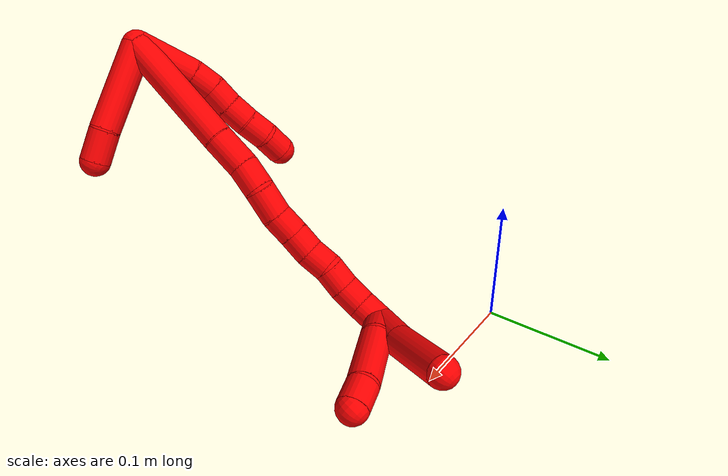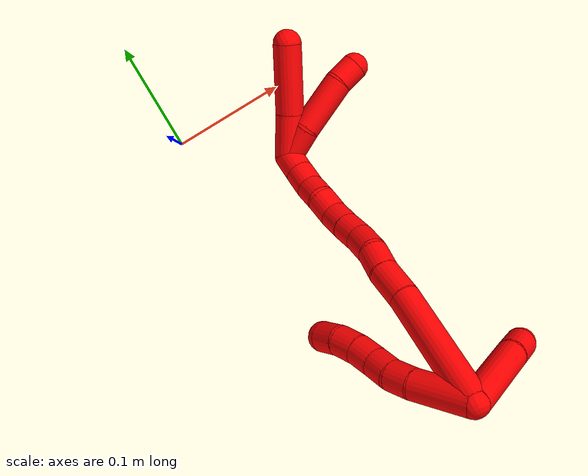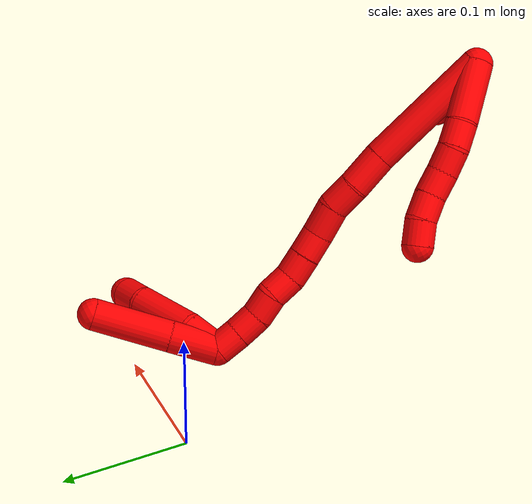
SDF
<sdf version="1.7">
 <world name="default">
  <model name="2">
   <static>0</static>
   <link name="2">
    <collision name="collision-cylinder-e_1_2_8">
     <pose>0.008859 -0.016257 -0.016313 2.35792 0.367224 0.844754</pose>
     <geometry><cylinder><radius>0.0125</radius><length>0.04935</length></cylinder></geometry>
     <surface>
      <friction><ode><mu>1.16</mu><mu2>1.16</mu2><slip1>0</slip1><slip2>0</slip2></ode></friction>
      <contact><ode><kp>1e+06</kp><kd>1</kd><max_vel>0</max_vel><min_depth>0.001</min_depth></ode></contact>
     </surface>
    </collision>
    <visual name="visual-cylinder-e_1_2_8">
     <pose>0.008859 -0.016257 -0.016313 2.35792 0.367224 0.844754</pose>
     <geometry><cylinder><radius>0.0125</radius><length>0.04935</length></cylinder></geometry>
     <material><ambient>1 0 0 1</ambient></material>
    </visual>
    <collision name="collision-cylinder-e_2_8_9">
     <pose>0.022319 -0.037969 -0.039881 2.49682 0.469125 1.24192</pose>
     <geometry><cylinder><radius>0.0125</radius><length>0.020355</length></cylinder></geometry>
     <surface>
      <friction><ode><mu>1.16</mu><mu2>1.16</mu2><slip1>0</slip1><slip2>0</slip2></ode></friction>
      <contact><ode><kp>1e+06</kp><kd>1</kd><max_vel>0</max_vel><min_depth>0.001</min_depth></ode></contact>
     </surface>
    </collision>
    <visual name="visual-cylinder-e_2_8_9">
     <pose>0.022319 -0.037969 -0.039881 2.49682 0.469125 1.24192</pose>
     <geometry><cylinder><radius>0.0125</radius><length>0.020355</length></cylinder></geometry>
     <material><ambient>1 0 0 1</ambient></material>
    </visual>
    <collision name="collision-cylinder-e_3_9_10">
     <pose>0.032091 -0.046731 -0.055107 2.74838 0.539808 1.8936</pose>
     <geometry><cylinder><radius>0.0125</radius><length>0.020118</length></cylinder></geometry>
     <surface>
      <friction><ode><mu>1.16</mu><mu2>1.16</mu2><slip1>0</slip1><slip2>0</slip2></ode></friction>
      <contact><ode><kp>1e+06</kp><kd>1</kd><max_vel>0</max_vel><min_depth>0.001</min_depth></ode></contact>
     </surface>
    </collision>
    <visual name="visual-cylinder-e_3_9_10">
     <pose>0.032091 -0.046731 -0.055107 2.74838 0.539808 1.8936</pose>
     <geometry><cylinder><radius>0.0125</radius><length>0.020118</length></cylinder></geometry>
     <material><ambient>1 0 0 1</ambient></material>
    </visual>
    <collision name="collision-cylinder-e_4_10_11">
     <pose>0.041383 -0.053887 -0.071372 2.70706 0.423479 1.54422</pose>
     <geometry><cylinder><radius>0.0125</radius><length>0.020062</length></cylinder></geometry>
     <surface>
      <friction><ode><mu>1.16</mu><mu2>1.16</mu2><slip1>0</slip1><slip2>0</slip2></ode></friction>
      <contact><ode><kp>1e+06</kp><kd>1</kd><max_vel>0</max_vel><min_depth>0.001</min_depth></ode></contact>
     </surface>
    </collision>
    <visual name="visual-cylinder-e_4_10_11">
     <pose>0.041383 -0.053887 -0.071372 2.70706 0.423479 1.54422</pose>
     <geometry><cylinder><radius>0.0125</radius><length>0.020062</length></cylinder></geometry>
     <material><ambient>1 0 0 1</ambient></material>
    </visual>
    <collision name="collision-cylinder-e_5_11_12">
     <pose>0.049933 -0.062692 -0.087201 2.55986 0.456437 1.31972</pose>
     <geometry><cylinder><radius>0.0125</radius><length>0.020092</length></cylinder></geometry>
     <surface>
      <friction><ode><mu>1.16</mu><mu2>1.16</mu2><slip1>0</slip1><slip2>0</slip2></ode></friction>
      <contact><ode><kp>1e+06</kp><kd>1</kd><max_vel>0</max_vel><min_depth>0.001</min_depth></ode></contact>
     </surface>
    </collision>
    <visual name="visual-cylinder-e_5_11_12">
     <pose>0.049933 -0.062692 -0.087201 2.55986 0.456437 1.31972</pose>
     <geometry><cylinder><radius>0.0125</radius><length>0.020092</length></cylinder></geometry>
     <material><ambient>1 0 0 1</ambient></material>
    </visual>
    <collision name="collision-cylinder-e_6_12_6">
     <pose>0.060612 -0.072915 -0.100515 2.40247 0.674367 1.47117</pose>
     <geometry><cylinder><radius>0.0125</radius><length>0.020023</length></cylinder></geometry>
     <surface>
      <friction><ode><mu>1.16</mu><mu2>1.16</mu2><slip1>0</slip1><slip2>0</slip2></ode></friction>
      <contact><ode><kp>1e+06</kp><kd>1</kd><max_vel>0</max_vel><min_depth>0.001</min_depth></ode></contact>
     </surface>
    </collision>
    <visual name="visual-cylinder-e_6_12_6">
     <pose>0.060612 -0.072915 -0.100515 2.40247 0.674367 1.47117</pose>
     <geometry><cylinder><radius>0.0125</radius><length>0.020023</length></cylinder></geometry>
     <material><ambient>1 0 0 1</ambient></material>
    </visual>
    <collision name="collision-cylinder-e_1_2_13">
     <pose>0.024471 0.023539 -0.014065 -2.10939 0.728603 -1.18345</pose>
     <geometry><cylinder><radius>0.0125</radius><length>0.073505</length></cylinder></geometry>
     <surface>
      <friction><ode><mu>1.16</mu><mu2>1.16</mu2><slip1>0</slip1><slip2>0</slip2></ode></friction>
      <contact><ode><kp>1e+06</kp><kd>1</kd><max_vel>0</max_vel><min_depth>0.001</min_depth></ode></contact>
     </surface>
    </collision>
    <visual name="visual-cylinder-e_1_2_13">
     <pose>0.024471 0.023539 -0.014065 -2.10939 0.728603 -1.18345</pose>
     <geometry><cylinder><radius>0.0125</radius><length>0.073505</length></cylinder></geometry>
     <material><ambient>1 0 0 1</ambient></material>
    </visual>
    <collision name="collision-cylinder-e_2_13_5">
     <pose>0.059238 0.054165 -0.03252 -2.12535 0.890233 -1.41664</pose>
     <geometry><cylinder><radius>0.0125</radius><length>0.026495</length></cylinder></geometry>
     <surface>
      <friction><ode><mu>1.16</mu><mu2>1.16</mu2><slip1>0</slip1><slip2>0</slip2></ode></friction>
      <contact><ode><kp>1e+06</kp><kd>1</kd><max_vel>0</max_vel><min_depth>0.001</min_depth></ode></contact>
     </surface>
    </collision>
    <visual name="visual-cylinder-e_2_13_5">
     <pose>0.059238 0.054165 -0.03252 -2.12535 0.890233 -1.41664</pose>
     <geometry><cylinder><radius>0.0125</radius><length>0.026495</length></cylinder></geometry>
     <material><ambient>1 0 0 1</ambient></material>
    </visual>
    <collision name="collision-cylinder-e_1_2_14">
     <pose>0.01385 -0.004765 -0.049063 3.04478 0.273897 2.46555</pose>
     <geometry><cylinder><radius>0.0125</radius><length>0.102405</length></cylinder></geometry>
     <surface>
      <friction><ode><mu>1.16</mu><mu2>1.16</mu2><slip1>0</slip1><slip2>0</slip2></ode></friction>
      <contact><ode><kp>1e+06</kp><kd>1</kd><max_vel>0</max_vel><min_depth>0.001</min_depth></ode></contact>
     </surface>
    </collision>
    <visual name="visual-cylinder-e_1_2_14">
     <pose>0.01385 -0.004765 -0.049063 3.04478 0.273897 2.46555</pose>
     <geometry><cylinder><radius>0.0125</radius><length>0.102405</length></cylinder></geometry>
     <material><ambient>1 0 0 1</ambient></material>
    </visual>
    <collision name="collision-cylinder-e_2_14_15">
     <pose>0.032577 -0.011994 -0.112218 2.96844 0.32864 2.17717</pose>
     <geometry><cylinder><radius>0.0125</radius><length>0.03023</length></cylinder></geometry>
     <surface>
      <friction><ode><mu>1.16</mu><mu2>1.16</mu2><slip1>0</slip1><slip2>0</slip2></ode></friction>
      <contact><ode><kp>1e+06</kp><kd>1</kd><max_vel>0</max_vel><min_depth>0.001</min_depth></ode></contact>
     </surface>
    </collision>
    <visual name="visual-cylinder-e_2_14_15">
     <pose>0.032577 -0.011994 -0.112218 2.96844 0.32864 2.17717</pose>
     <geometry><cylinder><radius>0.0125</radius><length>0.03023</length></cylinder></geometry>
     <material><ambient>1 0 0 1</ambient></material>
    </visual>
    <collision name="collision-cylinder-e_3_15_16">
     <pose>0.041457 -0.01461 -0.136903 3.12726 0.361137 3.06314</pose>
     <geometry><cylinder><radius>0.0125</radius><length>0.022649</length></cylinder></geometry>
     <surface>
      <friction><ode><mu>1.16</mu><mu2>1.16</mu2><slip1>0</slip1><slip2>0</slip2></ode></friction>
      <contact><ode><kp>1e+06</kp><kd>1</kd><max_vel>0</max_vel><min_depth>0.001</min_depth></ode></contact>
     </surface>
    </collision>
    <visual name="visual-cylinder-e_3_15_16">
     <pose>0.041457 -0.01461 -0.136903 3.12726 0.361137 3.06314</pose>
     <geometry><cylinder><radius>0.0125</radius><length>0.022649</length></cylinder></geometry>
     <material><ambient>1 0 0 1</ambient></material>
    </visual>
    <collision name="collision-cylinder-e_4_16_17">
     <pose>0.052357 -0.01643 -0.157529 2.97686 0.596008 2.61647</pose>
     <geometry><cylinder><radius>0.0125</radius><length>0.024579</length></cylinder></geometry>
     <surface>
      <friction><ode><mu>1.16</mu><mu2>1.16</mu2><slip1>0</slip1><slip2>0</slip2></ode></friction>
      <contact><ode><kp>1e+06</kp><kd>1</kd><max_vel>0</max_vel><min_depth>0.001</min_depth></ode></contact>
     </surface>
    </collision>
    <visual name="visual-cylinder-e_4_16_17">
     <pose>0.052357 -0.01643 -0.157529 2.97686 0.596008 2.61647</pose>
     <geometry><cylinder><radius>0.0125</radius><length>0.024579</length></cylinder></geometry>
     <material><ambient>1 0 0 1</ambient></material>
    </visual>
    <collision name="collision-cylinder-e_5_17_18">
     <pose>0.06363 -0.020729 -0.176215 2.84639 0.450445 1.99029</pose>
     <geometry><cylinder><radius>0.0125</radius><length>0.020093</length></cylinder></geometry>
     <surface>
      <friction><ode><mu>1.16</mu><mu2>1.16</mu2><slip1>0</slip1><slip2>0</slip2></ode></friction>
      <contact><ode><kp>1e+06</kp><kd>1</kd><max_vel>0</max_vel><min_depth>0.001</min_depth></ode></contact>
     </surface>
    </collision>
    <visual name="visual-cylinder-e_5_17_18">
     <pose>0.06363 -0.020729 -0.176215 2.84639 0.450445 1.99029</pose>
     <geometry><cylinder><radius>0.0125</radius><length>0.020093</length></cylinder></geometry>
     <material><ambient>1 0 0 1</ambient></material>
    </visual>
    <collision name="collision-cylinder-e_6_18_19">
     <pose>0.072426 -0.025556 -0.193575 2.89463 0.457608 2.16227</pose>
     <geometry><cylinder><radius>0.0125</radius><length>0.020018</length></cylinder></geometry>
     <surface>
      <friction><ode><mu>1.16</mu><mu2>1.16</mu2><slip1>0</slip1><slip2>0</slip2></ode></friction>
      <contact><ode><kp>1e+06</kp><kd>1</kd><max_vel>0</max_vel><min_depth>0.001</min_depth></ode></contact>
     </surface>
    </collision>
    <visual name="visual-cylinder-e_6_18_19">
     <pose>0.072426 -0.025556 -0.193575 2.89463 0.457608 2.16227</pose>
     <geometry><cylinder><radius>0.0125</radius><length>0.020018</length></cylinder></geometry>
     <material><ambient>1 0 0 1</ambient></material>
    </visual>
    <collision name="collision-cylinder-e_7_19_20">
     <pose>0.078402 -0.029819 -0.211948 2.93078 0.15599 1.27246</pose>
     <geometry><cylinder><radius>0.0125</radius><length>0.020014</length></cylinder></geometry>
     <surface>
      <friction><ode><mu>1.16</mu><mu2>1.16</mu2><slip1>0</slip1><slip2>0</slip2></ode></friction>
      <contact><ode><kp>1e+06</kp><kd>1</kd><max_vel>0</max_vel><min_depth>0.001</min_depth></ode></contact>
     </surface>
    </collision>
    <visual name="visual-cylinder-e_7_19_20">
     <pose>0.078402 -0.029819 -0.211948 2.93078 0.15599 1.27246</pose>
     <geometry><cylinder><radius>0.0125</radius><length>0.020014</length></cylinder></geometry>
     <material><ambient>1 0 0 1</ambient></material>
    </visual>
    <collision name="collision-cylinder-e_8_20_21">
     <pose>0.084493 -0.033642 -0.230355 2.94359 0.470693 2.35617</pose>
     <geometry><cylinder><radius>0.0125</radius><length>0.020005</length></cylinder></geometry>
     <surface>
      <friction><ode><mu>1.16</mu><mu2>1.16</mu2><slip1>0</slip1><slip2>0</slip2></ode></friction>
      <contact><ode><kp>1e+06</kp><kd>1</kd><max_vel>0</max_vel><min_depth>0.001</min_depth></ode></contact>
     </surface>
    </collision>
    <visual name="visual-cylinder-e_8_20_21">
     <pose>0.084493 -0.033642 -0.230355 2.94359 0.470693 2.35617</pose>
     <geometry><cylinder><radius>0.0125</radius><length>0.020005</length></cylinder></geometry>
     <material><ambient>1 0 0 1</ambient></material>
    </visual>
    <collision name="collision-cylinder-e_9_21_22">
     <pose>0.091077 -0.036762 -0.248789 3.00149 0.206233 1.94992</pose>
     <geometry><cylinder><radius>0.0125</radius><length>0.020003</length></cylinder></geometry>
     <surface>
      <friction><ode><mu>1.16</mu><mu2>1.16</mu2><slip1>0</slip1><slip2>0</slip2></ode></friction>
      <contact><ode><kp>1e+06</kp><kd>1</kd><max_vel>0</max_vel><min_depth>0.001</min_depth></ode></contact>
     </surface>
    </collision>
    <visual name="visual-cylinder-e_9_21_22">
     <pose>0.091077 -0.036762 -0.248789 3.00149 0.206233 1.94992</pose>
     <geometry><cylinder><radius>0.0125</radius><length>0.020003</length></cylinder></geometry>
     <material><ambient>1 0 0 1</ambient></material>
    </visual>
    <collision name="collision-cylinder-e_10_22_1">
     <pose>0.094459 -0.039433 -0.26831 3.00971 0.133785 1.58515</pose>
     <geometry><cylinder><radius>0.0125</radius><length>0.020005</length></cylinder></geometry>
     <surface>
      <friction><ode><mu>1.16</mu><mu2>1.16</mu2><slip1>0</slip1><slip2>0</slip2></ode></friction>
      <contact><ode><kp>1e+06</kp><kd>1</kd><max_vel>0</max_vel><min_depth>0.001</min_depth></ode></contact>
     </surface>
    </collision>
    <visual name="visual-cylinder-e_10_22_1">
     <pose>0.094459 -0.039433 -0.26831 3.00971 0.133785 1.58515</pose>
     <geometry><cylinder><radius>0.0125</radius><length>0.020005</length></cylinder></geometry>
     <material><ambient>1 0 0 1</ambient></material>
    </visual>
    <collision name="collision-cylinder-e_1_1_23">
     <pose>0.085193 -0.032994 -0.291879 -2.62851 -0.591737 1.72036</pose>
     <geometry><cylinder><radius>0.0125</radius><length>0.038009</length></cylinder></geometry>
     <surface>
      <friction><ode><mu>1.16</mu><mu2>1.16</mu2><slip1>0</slip1><slip2>0</slip2></ode></friction>
      <contact><ode><kp>1e+06</kp><kd>1</kd><max_vel>0</max_vel><min_depth>0.001</min_depth></ode></contact>
     </surface>
    </collision>
    <visual name="visual-cylinder-e_1_1_23">
     <pose>0.085193 -0.032994 -0.291879 -2.62851 -0.591737 1.72036</pose>
     <geometry><cylinder><radius>0.0125</radius><length>0.038009</length></cylinder></geometry>
     <material><ambient>1 0 0 1</ambient></material>
    </visual>
    <collision name="collision-cylinder-e_2_23_4">
     <pose>0.055507 -0.014611 -0.327604 -2.69079 -0.663334 1.96678</pose>
     <geometry><cylinder><radius>0.0125</radius><length>0.061991</length></cylinder></geometry>
     <surface>
      <friction><ode><mu>1.16</mu><mu2>1.16</mu2><slip1>0</slip1><slip2>0</slip2></ode></friction>
      <contact><ode><kp>1e+06</kp><kd>1</kd><max_vel>0</max_vel><min_depth>0.001</min_depth></ode></contact>
     </surface>
    </collision>
    <visual name="visual-cylinder-e_2_23_4">
     <pose>0.055507 -0.014611 -0.327604 -2.69079 -0.663334 1.96678</pose>
     <geometry><cylinder><radius>0.0125</radius><length>0.061991</length></cylinder></geometry>
     <material><ambient>1 0 0 1</ambient></material>
    </visual>
    <collision name="collision-cylinder-e_1_1_24">
     <pose>0.089268 -0.029203 -0.284079 -2.04651 -0.466045 0.742402</pose>
     <geometry><cylinder><radius>0.0125</radius><length>0.029046</length></cylinder></geometry>
     <surface>
      <friction><ode><mu>1.16</mu><mu2>1.16</mu2><slip1>0</slip1><slip2>0</slip2></ode></friction>
      <contact><ode><kp>1e+06</kp><kd>1</kd><max_vel>0</max_vel><min_depth>0.001</min_depth></ode></contact>
     </surface>
    </collision>
    <visual name="visual-cylinder-e_1_1_24">
     <pose>0.089268 -0.029203 -0.284079 -2.04651 -0.466045 0.742402</pose>
     <geometry><cylinder><radius>0.0125</radius><length>0.029046</length></cylinder></geometry>
     <material><ambient>1 0 0 1</ambient></material>
    </visual>
    <collision name="collision-cylinder-e_2_24_25">
     <pose>0.077601 0.003854 -0.30198 -2.07795 -0.205825 0.347524</pose>
     <geometry><cylinder><radius>0.0125</radius><length>0.050309</length></cylinder></geometry>
     <surface>
      <friction><ode><mu>1.16</mu><mu2>1.16</mu2><slip1>0</slip1><slip2>0</slip2></ode></friction>
      <contact><ode><kp>1e+06</kp><kd>1</kd><max_vel>0</max_vel><min_depth>0.001</min_depth></ode></contact>
     </surface>
    </collision>
    <visual name="visual-cylinder-e_2_24_25">
     <pose>0.077601 0.003854 -0.30198 -2.07795 -0.205825 0.347524</pose>
     <geometry><cylinder><radius>0.0125</radius><length>0.050309</length></cylinder></geometry>
     <material><ambient>1 0 0 1</ambient></material>
    </visual>
    <collision name="collision-cylinder-e_3_25_3">
     <pose>0.072493 0.034865 -0.318009 -1.97606 0.003246 -0.004925</pose>
     <geometry><cylinder><radius>0.0125</radius><length>0.020646</length></cylinder></geometry>
     <surface>
      <friction><ode><mu>1.16</mu><mu2>1.16</mu2><slip1>0</slip1><slip2>0</slip2></ode></friction>
      <contact><ode><kp>1e+06</kp><kd>1</kd><max_vel>0</max_vel><min_depth>0.001</min_depth></ode></contact>
     </surface>
    </collision>
    <visual name="visual-cylinder-e_3_25_3">
     <pose>0.072493 0.034865 -0.318009 -1.97606 0.003246 -0.004925</pose>
     <geometry><cylinder><radius>0.0125</radius><length>0.020646</length></cylinder></geometry>
     <material><ambient>1 0 0 1</ambient></material>
    </visual>
    <collision name="collision-sphere-3">
     <pose>0.072527 0.044352 -0.322079 0 -0 0</pose>
     <geometry><sphere><radius>0.0125</radius></sphere></geometry>
     <surface>
      <friction><ode><mu>1.16</mu><mu2>1.16</mu2><slip1>0</slip1><slip2>0</slip2></ode></friction>
      <contact><ode><kp>1e+06</kp><kd>1</kd><max_vel>0</max_vel><min_depth>0.001</min_depth></ode></contact>
     </surface>
    </collision>
    <visual name="visual-sphere-3">
     <pose>0.072527 0.044352 -0.322079 0 -0 0</pose>
     <geometry><sphere><radius>0.0125</radius></sphere></geometry>
     <material><ambient>1 0 0 1</ambient></material>
    </visual>
    <collision name="collision-sphere-25">
     <pose>0.07246 0.025379 -0.313939 0 -0 0</pose>
     <geometry><sphere><radius>0.0125</radius></sphere></geometry>
     <surface>
      <friction><ode><mu>1.16</mu><mu2>1.16</mu2><slip1>0</slip1><slip2>0</slip2></ode></friction>
      <contact><ode><kp>1e+06</kp><kd>1</kd><max_vel>0</max_vel><min_depth>0.001</min_depth></ode></contact>
     </surface>
    </collision>
    <visual name="visual-sphere-25">
     <pose>0.07246 0.025379 -0.313939 0 -0 0</pose>
     <geometry><sphere><radius>0.0125</radius></sphere></geometry>
     <material><ambient>1 0 0 1</ambient></material>
    </visual>
    <collision name="collision-sphere-24">
     <pose>0.082742 -0.01767 -0.29002 0 -0 0</pose>
     <geometry><sphere><radius>0.0125</radius></sphere></geometry>
     <surface>
      <friction><ode><mu>1.16</mu><mu2>1.16</mu2><slip1>0</slip1><slip2>0</slip2></ode></friction>
      <contact><ode><kp>1e+06</kp><kd>1</kd><max_vel>0</max_vel><min_depth>0.001</min_depth></ode></contact>
     </surface>
    </collision>
    <visual name="visual-sphere-24">
     <pose>0.082742 -0.01767 -0.29002 0 -0 0</pose>
     <geometry><sphere><radius>0.0125</radius></sphere></geometry>
     <material><ambient>1 0 0 1</ambient></material>
    </visual>
    <collision name="collision-sphere-4">
     <pose>0.036421 -0.00397 -0.349587 0 -0 0</pose>
     <geometry><sphere><radius>0.0125</radius></sphere></geometry>
     <surface>
      <friction><ode><mu>1.16</mu><mu2>1.16</mu2><slip1>0</slip1><slip2>0</slip2></ode></friction>
      <contact><ode><kp>1e+06</kp><kd>1</kd><max_vel>0</max_vel><min_depth>0.001</min_depth></ode></contact>
     </surface>
    </collision>
    <visual name="visual-sphere-4">
     <pose>0.036421 -0.00397 -0.349587 0 -0 0</pose>
     <geometry><sphere><radius>0.0125</radius></sphere></geometry>
     <material><ambient>1 0 0 1</ambient></material>
    </visual>
    <collision name="collision-sphere-23">
     <pose>0.074592 -0.025251 -0.305621 0 -0 0</pose>
     <geometry><sphere><radius>0.0125</radius></sphere></geometry>
     <surface>
      <friction><ode><mu>1.16</mu><mu2>1.16</mu2><slip1>0</slip1><slip2>0</slip2></ode></friction>
      <contact><ode><kp>1e+06</kp><kd>1</kd><max_vel>0</max_vel><min_depth>0.001</min_depth></ode></contact>
     </surface>
    </collision>
    <visual name="visual-sphere-23">
     <pose>0.074592 -0.025251 -0.305621 0 -0 0</pose>
     <geometry><sphere><radius>0.0125</radius></sphere></geometry>
     <material><ambient>1 0 0 1</ambient></material>
    </visual>
    <collision name="collision-sphere-1">
     <pose>0.095794 -0.040736 -0.278137 0 -0 0</pose>
     <geometry><sphere><radius>0.0125</radius></sphere></geometry>
     <surface>
      <friction><ode><mu>1.16</mu><mu2>1.16</mu2><slip1>0</slip1><slip2>0</slip2></ode></friction>
      <contact><ode><kp>1e+06</kp><kd>1</kd><max_vel>0</max_vel><min_depth>0.001</min_depth></ode></contact>
     </surface>
    </collision>
    <visual name="visual-sphere-1">
     <pose>0.095794 -0.040736 -0.278137 0 -0 0</pose>
     <geometry><sphere><radius>0.0125</radius></sphere></geometry>
     <material><ambient>1 0 0 1</ambient></material>
    </visual>
    <collision name="collision-sphere-22">
     <pose>0.093125 -0.038129 -0.258482 0 -0 0</pose>
     <geometry><sphere><radius>0.0125</radius></sphere></geometry>
     <surface>
      <friction><ode><mu>1.16</mu><mu2>1.16</mu2><slip1>0</slip1><slip2>0</slip2></ode></friction>
      <contact><ode><kp>1e+06</kp><kd>1</kd><max_vel>0</max_vel><min_depth>0.001</min_depth></ode></contact>
     </surface>
    </collision>
    <visual name="visual-sphere-22">
     <pose>0.093125 -0.038129 -0.258482 0 -0 0</pose>
     <geometry><sphere><radius>0.0125</radius></sphere></geometry>
     <material><ambient>1 0 0 1</ambient></material>
    </visual>
    <collision name="collision-sphere-21">
     <pose>0.089029 -0.035395 -0.239096 0 -0 0</pose>
     <geometry><sphere><radius>0.0125</radius></sphere></geometry>
     <surface>
      <friction><ode><mu>1.16</mu><mu2>1.16</mu2><slip1>0</slip1><slip2>0</slip2></ode></friction>
      <contact><ode><kp>1e+06</kp><kd>1</kd><max_vel>0</max_vel><min_depth>0.001</min_depth></ode></contact>
     </surface>
    </collision>
    <visual name="visual-sphere-21">
     <pose>0.089029 -0.035395 -0.239096 0 -0 0</pose>
     <geometry><sphere><radius>0.0125</radius></sphere></geometry>
     <material><ambient>1 0 0 1</ambient></material>
    </visual>
    <collision name="collision-sphere-12">
     <pose>0.05436 -0.067647 -0.094735 0 -0 0</pose>
     <geometry><sphere><radius>0.0125</radius></sphere></geometry>
     <surface>
      <friction><ode><mu>1.16</mu><mu2>1.16</mu2><slip1>0</slip1><slip2>0</slip2></ode></friction>
      <contact><ode><kp>1e+06</kp><kd>1</kd><max_vel>0</max_vel><min_depth>0.001</min_depth></ode></contact>
     </surface>
    </collision>
    <visual name="visual-sphere-12">
     <pose>0.05436 -0.067647 -0.094735 0 -0 0</pose>
     <geometry><sphere><radius>0.0125</radius></sphere></geometry>
     <material><ambient>1 0 0 1</ambient></material>
    </visual>
    <collision name="collision-sphere-11">
     <pose>0.045505 -0.057737 -0.079667 0 -0 0</pose>
     <geometry><sphere><radius>0.0125</radius></sphere></geometry>
     <surface>
      <friction><ode><mu>1.16</mu><mu2>1.16</mu2><slip1>0</slip1><slip2>0</slip2></ode></friction>
      <contact><ode><kp>1e+06</kp><kd>1</kd><max_vel>0</max_vel><min_depth>0.001</min_depth></ode></contact>
     </surface>
    </collision>
    <visual name="visual-sphere-11">
     <pose>0.045505 -0.057737 -0.079667 0 -0 0</pose>
     <geometry><sphere><radius>0.0125</radius></sphere></geometry>
     <material><ambient>1 0 0 1</ambient></material>
    </visual>
    <collision name="collision-sphere-10">
     <pose>0.037261 -0.050038 -0.063077 0 -0 0</pose>
     <geometry><sphere><radius>0.0125</radius></sphere></geometry>
     <surface>
      <friction><ode><mu>1.16</mu><mu2>1.16</mu2><slip1>0</slip1><slip2>0</slip2></ode></friction>
      <contact><ode><kp>1e+06</kp><kd>1</kd><max_vel>0</max_vel><min_depth>0.001</min_depth></ode></contact>
     </surface>
    </collision>
    <visual name="visual-sphere-10">
     <pose>0.037261 -0.050038 -0.063077 0 -0 0</pose>
     <geometry><sphere><radius>0.0125</radius></sphere></geometry>
     <material><ambient>1 0 0 1</ambient></material>
    </visual>
    <collision name="collision-sphere-9">
     <pose>0.026921 -0.043425 -0.047137 0 -0 0</pose>
     <geometry><sphere><radius>0.0125</radius></sphere></geometry>
     <surface>
      <friction><ode><mu>1.16</mu><mu2>1.16</mu2><slip1>0</slip1><slip2>0</slip2></ode></friction>
      <contact><ode><kp>1e+06</kp><kd>1</kd><max_vel>0</max_vel><min_depth>0.001</min_depth></ode></contact>
     </surface>
    </collision>
    <visual name="visual-sphere-9">
     <pose>0.026921 -0.043425 -0.047137 0 -0 0</pose>
     <geometry><sphere><radius>0.0125</radius></sphere></geometry>
     <material><ambient>1 0 0 1</ambient></material>
    </visual>
    <collision name="collision-sphere-2">
     <geometry><sphere><radius>0.0125</radius></sphere></geometry>
     <surface>
      <friction><ode><mu>1.16</mu><mu2>1.16</mu2><slip1>0</slip1><slip2>0</slip2></ode></friction>
      <contact><ode><kp>1e+06</kp><kd>1</kd><max_vel>0</max_vel><min_depth>0.001</min_depth></ode></contact>
     </surface>
    </collision>
    <visual name="visual-sphere-2">
     <geometry><sphere><radius>0.0125</radius></sphere></geometry>
     <material><ambient>1 0 0 1</ambient></material>
    </visual>
    <collision name="collision-sphere-19">
     <pose>0.076848 -0.027751 -0.202282 0 -0 0</pose>
     <geometry><sphere><radius>0.0125</radius></sphere></geometry>
     <surface>
      <friction><ode><mu>1.16</mu><mu2>1.16</mu2><slip1>0</slip1><slip2>0</slip2></ode></friction>
      <contact><ode><kp>1e+06</kp><kd>1</kd><max_vel>0</max_vel><min_depth>0.001</min_depth></ode></contact>
     </surface>
    </collision>
    <visual name="visual-sphere-19">
     <pose>0.076848 -0.027751 -0.202282 0 -0 0</pose>
     <geometry><sphere><radius>0.0125</radius></sphere></geometry>
     <material><ambient>1 0 0 1</ambient></material>
    </visual>
    <collision name="collision-sphere-8">
     <pose>0.017718 -0.032513 -0.032626 0 -0 0</pose>
     <geometry><sphere><radius>0.0125</radius></sphere></geometry>
     <surface>
      <friction><ode><mu>1.16</mu><mu2>1.16</mu2><slip1>0</slip1><slip2>0</slip2></ode></friction>
      <contact><ode><kp>1e+06</kp><kd>1</kd><max_vel>0</max_vel><min_depth>0.001</min_depth></ode></contact>
     </surface>
    </collision>
    <visual name="visual-sphere-8">
     <pose>0.017718 -0.032513 -0.032626 0 -0 0</pose>
     <geometry><sphere><radius>0.0125</radius></sphere></geometry>
     <material><ambient>1 0 0 1</ambient></material>
    </visual>
    <collision name="collision-sphere-6">
     <pose>0.066863 -0.078183 -0.106294 0 -0 0</pose>
     <geometry><sphere><radius>0.0125</radius></sphere></geometry>
     <surface>
      <friction><ode><mu>1.16</mu><mu2>1.16</mu2><slip1>0</slip1><slip2>0</slip2></ode></friction>
      <contact><ode><kp>1e+06</kp><kd>1</kd><max_vel>0</max_vel><min_depth>0.001</min_depth></ode></contact>
     </surface>
    </collision>
    <visual name="visual-sphere-6">
     <pose>0.066863 -0.078183 -0.106294 0 -0 0</pose>
     <geometry><sphere><radius>0.0125</radius></sphere></geometry>
     <material><ambient>1 0 0 1</ambient></material>
    </visual>
    <collision name="collision-sphere-13">
     <pose>0.048942 0.047079 -0.028131 0 -0 0</pose>
     <geometry><sphere><radius>0.0125</radius></sphere></geometry>
     <surface>
      <friction><ode><mu>1.16</mu><mu2>1.16</mu2><slip1>0</slip1><slip2>0</slip2></ode></friction>
      <contact><ode><kp>1e+06</kp><kd>1</kd><max_vel>0</max_vel><min_depth>0.001</min_depth></ode></contact>
     </surface>
    </collision>
    <visual name="visual-sphere-13">
     <pose>0.048942 0.047079 -0.028131 0 -0 0</pose>
     <geometry><sphere><radius>0.0125</radius></sphere></geometry>
     <material><ambient>1 0 0 1</ambient></material>
    </visual>
    <collision name="collision-sphere-5">
     <pose>0.069534 0.061251 -0.036909 0 -0 0</pose>
     <geometry><sphere><radius>0.0125</radius></sphere></geometry>
     <surface>
      <friction><ode><mu>1.16</mu><mu2>1.16</mu2><slip1>0</slip1><slip2>0</slip2></ode></friction>
      <contact><ode><kp>1e+06</kp><kd>1</kd><max_vel>0</max_vel><min_depth>0.001</min_depth></ode></contact>
     </surface>
    </collision>
    <visual name="visual-sphere-5">
     <pose>0.069534 0.061251 -0.036909 0 -0 0</pose>
     <geometry><sphere><radius>0.0125</radius></sphere></geometry>
     <material><ambient>1 0 0 1</ambient></material>
    </visual>
    <collision name="collision-sphere-14">
     <pose>0.027699 -0.009529 -0.098126 0 -0 0</pose>
     <geometry><sphere><radius>0.0125</radius></sphere></geometry>
     <surface>
      <friction><ode><mu>1.16</mu><mu2>1.16</mu2><slip1>0</slip1><slip2>0</slip2></ode></friction>
      <contact><ode><kp>1e+06</kp><kd>1</kd><max_vel>0</max_vel><min_depth>0.001</min_depth></ode></contact>
     </surface>
    </collision>
    <visual name="visual-sphere-14">
     <pose>0.027699 -0.009529 -0.098126 0 -0 0</pose>
     <geometry><sphere><radius>0.0125</radius></sphere></geometry>
     <material><ambient>1 0 0 1</ambient></material>
    </visual>
    <collision name="collision-sphere-15">
     <pose>0.037456 -0.014459 -0.12631 0 -0 0</pose>
     <geometry><sphere><radius>0.0125</radius></sphere></geometry>
     <surface>
      <friction><ode><mu>1.16</mu><mu2>1.16</mu2><slip1>0</slip1><slip2>0</slip2></ode></friction>
      <contact><ode><kp>1e+06</kp><kd>1</kd><max_vel>0</max_vel><min_depth>0.001</min_depth></ode></contact>
     </surface>
    </collision>
    <visual name="visual-sphere-15">
     <pose>0.037456 -0.014459 -0.12631 0 -0 0</pose>
     <geometry><sphere><radius>0.0125</radius></sphere></geometry>
     <material><ambient>1 0 0 1</ambient></material>
    </visual>
    <collision name="collision-sphere-16">
     <pose>0.045459 -0.014762 -0.147496 0 -0 0</pose>
     <geometry><sphere><radius>0.0125</radius></sphere></geometry>
     <surface>
      <friction><ode><mu>1.16</mu><mu2>1.16</mu2><slip1>0</slip1><slip2>0</slip2></ode></friction>
      <contact><ode><kp>1e+06</kp><kd>1</kd><max_vel>0</max_vel><min_depth>0.001</min_depth></ode></contact>
     </surface>
    </collision>
    <visual name="visual-sphere-16">
     <pose>0.045459 -0.014762 -0.147496 0 -0 0</pose>
     <geometry><sphere><radius>0.0125</radius></sphere></geometry>
     <material><ambient>1 0 0 1</ambient></material>
    </visual>
    <collision name="collision-sphere-17">
     <pose>0.059256 -0.018098 -0.167562 0 -0 0</pose>
     <geometry><sphere><radius>0.0125</radius></sphere></geometry>
     <surface>
      <friction><ode><mu>1.16</mu><mu2>1.16</mu2><slip1>0</slip1><slip2>0</slip2></ode></friction>
      <contact><ode><kp>1e+06</kp><kd>1</kd><max_vel>0</max_vel><min_depth>0.001</min_depth></ode></contact>
     </surface>
    </collision>
    <visual name="visual-sphere-17">
     <pose>0.059256 -0.018098 -0.167562 0 -0 0</pose>
     <geometry><sphere><radius>0.0125</radius></sphere></geometry>
     <material><ambient>1 0 0 1</ambient></material>
    </visual>
    <collision name="collision-sphere-18">
     <pose>0.068003 -0.02336 -0.184868 0 -0 0</pose>
     <geometry><sphere><radius>0.0125</radius></sphere></geometry>
     <surface>
      <friction><ode><mu>1.16</mu><mu2>1.16</mu2><slip1>0</slip1><slip2>0</slip2></ode></friction>
      <contact><ode><kp>1e+06</kp><kd>1</kd><max_vel>0</max_vel><min_depth>0.001</min_depth></ode></contact>
     </surface>
    </collision>
    <visual name="visual-sphere-18">
     <pose>0.068003 -0.02336 -0.184868 0 -0 0</pose>
     <geometry><sphere><radius>0.0125</radius></sphere></geometry>
     <material><ambient>1 0 0 1</ambient></material>
    </visual>
    <collision name="collision-sphere-20">
     <pose>0.079957 -0.031888 -0.221614 0 -0 0</pose>
     <geometry><sphere><radius>0.0125</radius></sphere></geometry>
     <surface>
      <friction><ode><mu>1.16</mu><mu2>1.16</mu2><slip1>0</slip1><slip2>0</slip2></ode></friction>
      <contact><ode><kp>1e+06</kp><kd>1</kd><max_vel>0</max_vel><min_depth>0.001</min_depth></ode></contact>
     </surface>
    </collision>
    <visual name="visual-sphere-20">
     <pose>0.079957 -0.031888 -0.221614 0 -0 0</pose>
     <geometry><sphere><radius>0.0125</radius></sphere></geometry>
     <material><ambient>1 0 0 1</ambient></material>
    </visual>
    <inertial>
     <pose>0.049271 -0.01407 -0.150971 0 -0 0</pose>
     <mass>0.75</mass>
     <inertia>
      <ixx>4.3e-05</ixx>
      <ixy>0</ixy>
      <ixz>0</ixz>
      <iyy>0.000192</iyy>
      <iyz>0</iyz>
      <izz>-0.000112</izz>
     </inertia>
    </inertial>
   </link>
   <pose>0.096901 -0.288508 0.200242 -0.125573 1.19383 -1.81732</pose>
  </model>
 </world>
</sdf>
